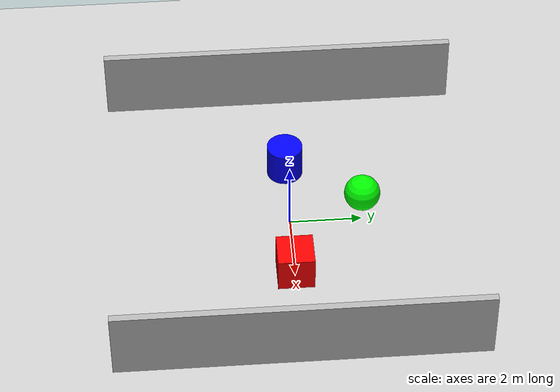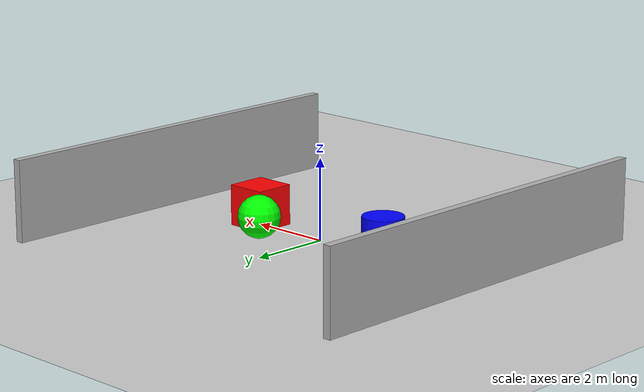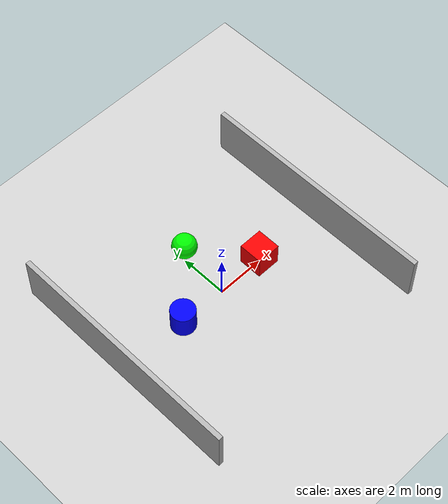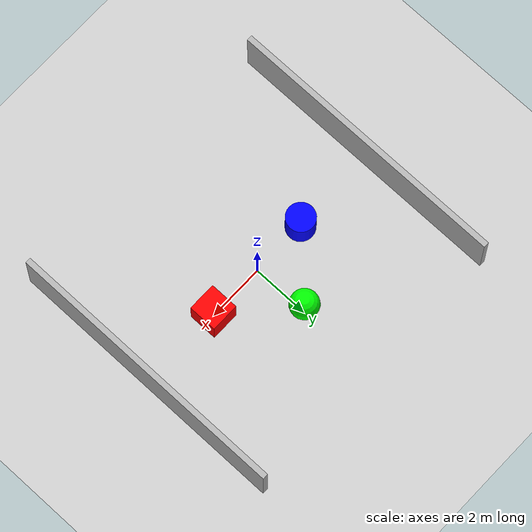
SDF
<?xml version="1.0" ?>

<!-- SDF (Simulation Description Format) versiyonu -->
<sdf version="1.9">

  <!-- WORLD TANIMI - Simülasyon ortamının ana container'ı -->
  <world name="first_world">

    <!-- PHYSICS AYARLARI - Fizik motoru konfigürasyonu -->

    <!-- Physics engine ayarları -->
    <physics name="1ms" type="ignored">
      <!-- Maksimum step size - ne kadar hassas fizik hesaplaması -->
      <max_step_size>0.001</max_step_size>

      <!-- Gerçek zamanlı faktör - 1.0 = gerçek zaman hızı -->
      <real_time_factor>1.0</real_time_factor>

      <!-- Gerçek zamanlı update rate - saniyede kaç physics step -->
      <real_time_update_rate>1000</real_time_update_rate>
    </physics>

    <!-- PLUGIN'LER - Simülasyon davranışlarını kontrol eden yazılımlar -->

    <!-- Physics plugin - Fizik motorunu başlatır -->
    <plugin
      filename="gz-sim-physics-system"
      name="gz::sim::systems::Physics">
    </plugin>

    <!-- User commands plugin - Kullanıcı etkileşimi için -->
    <plugin
      filename="gz-sim-user-commands-system"
      name="gz::sim::systems::UserCommands">
    </plugin>

    <!-- Scene broadcaster - 3D sahne bilgilerini yayınlar -->
    <plugin
      filename="gz-sim-scene-broadcaster-system"
      name="gz::sim::systems::SceneBroadcaster">
    </plugin>

    <!-- AYDINLATMA - Dünya aydınlatması -->

    <!-- Güneş ışığı - Ana ışık kaynağı -->
    <light type="directional" name="sun">
      <!-- Işığın pozisyonu (x, y, z koordinatları) -->
      <pose>0 0 10 0 0 0</pose>

      <!-- Işık yönü - yukarıdan aşağıya doğru -->
      <direction>-0.5 0.1 -0.9</direction>

      <!-- Işık rengi ve parlaklığı (R G B A - 0.0 ile 1.0 arası) -->
      <diffuse>1.0 1.0 1.0 1</diffuse>
      <specular>0.5 0.5 0.5 1</specular>

      <!-- Işık şiddeti -->
      <intensity>1.0</intensity>

      <!-- Işın mesafesi -->
      <range>100</range>

      <!-- Gölge ayarları -->
      <cast_shadows>true</cast_shadows>
    </light>

    <!-- ZEMIN - Dünya zemi i ve gravity -->

    <!-- Yerçekimi ayarları (x, y, z - metre/saniye²) -->
    <!-- Dünya'da yerçekimi -9.81 m/s² aşağı doğru (z ekseni) -->
    <gravity>0 0 -9.81</gravity>

    <!-- Zemin modeli -->
    <model name="ground_plane">
      <!-- Zemin sabit kalacak (hareket etmeyecek) -->
      <static>true</static>

      <!-- Zemin geometrisi -->
      <link name="ground_link">
        <!-- Çarpışma geometrisi - fizik hesaplamaları için -->
        <collision name="ground_collision">
          <geometry>
            <!-- Düz zemin - çok büyük bir kutu -->
            <plane>
              <!-- Zemin normali (yukarı bakan) -->
              <normal>0 0 1</normal>
              <!-- Zemin boyutu (x, y boyutları) -->
              <size>100 100</size>
            </plane>
          </geometry>

          <!-- Yüzey özellikleri - sürtünme, elastikiyet -->
          <surface>
            <friction>
              <ode>
                <!-- Sürtünme katsayıları -->
                <mu>100</mu>      <!-- Birincil sürtünme -->
                <mu2>50</mu2>     <!-- İkincil sürtünme -->
              </ode>
            </friction>

            <!-- Elastikiyet özellikleri -->
            <bounce>
              <restitution_coefficient>0.01</restitution_coefficient>
              <threshold>0.05</threshold>
            </bounce>
          </surface>
        </collision>

        <!-- Görsel geometri - ekranda nasıl görüneceği -->
        <visual name="ground_visual">
          <geometry>
            <plane>
              <normal>0 0 1</normal>
              <size>100 100</size>
            </plane>
          </geometry>

          <!-- Materyal ve renk -->
          <material>
            <!-- Zemin rengi - açık gri -->
            <ambient>0.8 0.8 0.8 1</ambient>
            <diffuse>0.8 0.8 0.8 1</diffuse>
            <specular>0.8 0.8 0.8 1</specular>
          </material>
        </visual>
      </link>
    </model>

    <!-- BASİT NESNELER - Test ve görsel çeşitlilik için -->

    <!-- Kırmızı küp -->
    <model name="red_box">
      <!-- Küpün pozisyonu (x=2, y=0, z=0.5 - zemin üzerinde) -->
      <pose>2 0 0.5 0 0 0</pose>

      <link name="box_link">
        <!-- Çarpışma geometrisi -->
        <collision name="box_collision">
          <geometry>
            <!-- 1x1x1 metre küp -->
            <box>
              <size>1 1 1</size>
            </box>
          </geometry>
        </collision>

        <!-- Görsel geometri -->
        <visual name="box_visual">
          <geometry>
            <box>
              <size>1 1 1</size>
            </box>
          </geometry>

          <!-- Kırmızı materyal -->
          <material>
            <ambient>1.0 0.0 0.0 1</ambient>  <!-- Kırmızı -->
            <diffuse>1.0 0.0 0.0 1</diffuse>
            <specular>1.0 1.0 1.0 1</specular>
          </material>
        </visual>

        <!-- Fiziksel özellikler -->
        <inertial>
          <!-- Kütle (kg) -->
          <mass>1.0</mass>

          <!-- Atalet matrisi - küp için standart değerler -->
          <inertia>
            <ixx>0.167</ixx>
            <iyy>0.167</iyy>
            <izz>0.167</izz>
            <ixy>0</ixy>
            <ixz>0</ixz>
            <iyz>0</iyz>
          </inertia>
        </inertial>
      </link>
    </model>

    <!-- Mavi silindir -->
    <model name="blue_cylinder">
      <!-- Silindirin pozisyonu -->
      <pose>-2 0 0.5 0 0 0</pose>

      <link name="cylinder_link">
        <collision name="cylinder_collision">
          <geometry>
            <!-- Silindir: radius=0.5, height=1.0 -->
            <cylinder>
              <radius>0.5</radius>
              <length>1.0</length>
            </cylinder>
          </geometry>
        </collision>

        <visual name="cylinder_visual">
          <geometry>
            <cylinder>
              <radius>0.5</radius>
              <length>1.0</length>
            </cylinder>
          </geometry>

          <!-- Mavi materyal -->
          <material>
            <ambient>0.0 0.0 1.0 1</ambient>  <!-- Mavi -->
            <diffuse>0.0 0.0 1.0 1</diffuse>
            <specular>1.0 1.0 1.0 1</specular>
          </material>
        </visual>

        <inertial>
          <mass>1.0</mass>
          <!-- Silindir için atalet matrisi -->
          <inertia>
            <ixx>0.146</ixx>
            <iyy>0.146</iyy>
            <izz>0.125</izz>
            <ixy>0</ixy>
            <ixz>0</ixz>
            <iyz>0</iyz>
          </inertia>
        </inertial>
      </link>
    </model>

    <!-- Yeşil küre -->
    <model name="green_sphere">
      <!-- Kürenin pozisyonu -->
      <pose>0 2 1.0 0 0 0</pose>

      <link name="sphere_link">
        <collision name="sphere_collision">
          <geometry>
            <!-- Küre: radius=0.5 -->
            <sphere>
              <radius>0.5</radius>
            </sphere>
          </geometry>
        </collision>

        <visual name="sphere_visual">
          <geometry>
            <sphere>
              <radius>0.5</radius>
            </sphere>
          </geometry>

          <!-- Yeşil materyal -->
          <material>
            <ambient>0.0 1.0 0.0 1</ambient>  <!-- Yeşil -->
            <diffuse>0.0 1.0 0.0 1</diffuse>
            <specular>1.0 1.0 1.0 1</specular>
          </material>
        </visual>

        <inertial>
          <mass>1.0</mass>
          <!-- Küre için atalet matrisi -->
          <inertia>
            <ixx>0.1</ixx>
            <iyy>0.1</iyy>
            <izz>0.1</izz>
            <ixy>0</ixy>
            <ixz>0</ixz>
            <iyz>0</iyz>
          </inertia>
        </inertial>
      </link>
    </model>

    <!-- DUVAR YAPISI - Ortamı ilginç kılmak için -->

    <!-- Duvar 1 -->
    <model name="wall1">
      <pose>5 0 1 0 0 0</pose>
      <static>true</static>  <!-- Duvar hareket etmez -->

      <link name="wall_link">
        <collision name="wall_collision">
          <geometry>
            <!-- İnce uzun duvar -->
            <box>
              <size>0.2 10 2</size>
            </box>
          </geometry>
        </collision>

        <visual name="wall_visual">
          <geometry>
            <box>
              <size>0.2 10 2</size>
            </box>
          </geometry>

          <!-- Gri duvar -->
          <material>
            <ambient>0.7 0.7 0.7 1</ambient>
            <diffuse>0.7 0.7 0.7 1</diffuse>
            <specular>1.0 1.0 1.0 1</specular>
          </material>
        </visual>
      </link>
    </model>

    <!-- Duvar 2 -->
    <model name="wall2">
      <pose>-5 0 1 0 0 0</pose>
      <static>true</static>

      <link name="wall_link">
        <collision name="wall_collision">
          <geometry>
            <box>
              <size>0.2 10 2</size>
            </box>
          </geometry>
        </collision>

        <visual name="wall_visual">
          <geometry>
            <box>
              <size>0.2 10 2</size>
            </box>
          </geometry>

          <material>
            <ambient>0.7 0.7 0.7 1</ambient>
            <diffuse>0.7 0.7 0.7 1</diffuse>
            <specular>1.0 1.0 1.0 1</specular>
          </material>
        </visual>
      </link>
    </model>

  </world>
</sdf>
